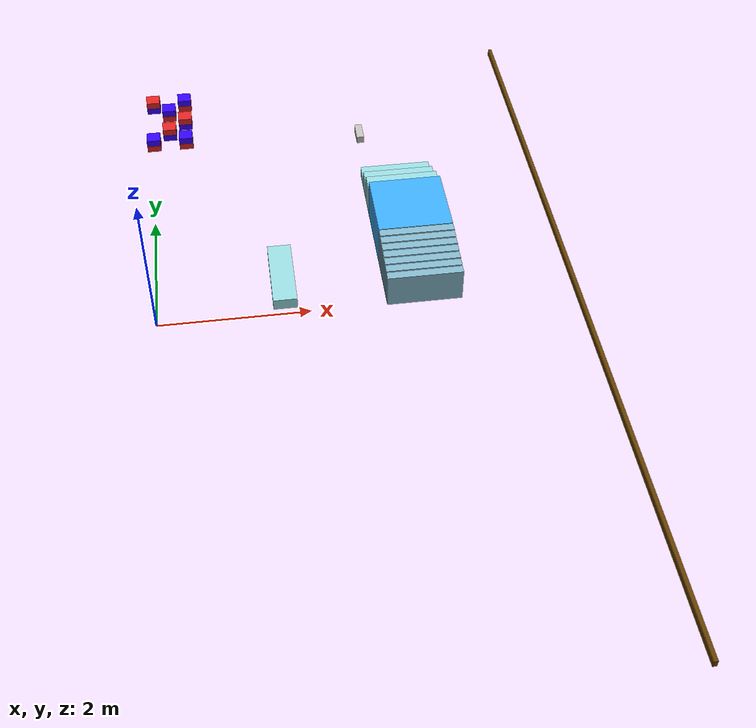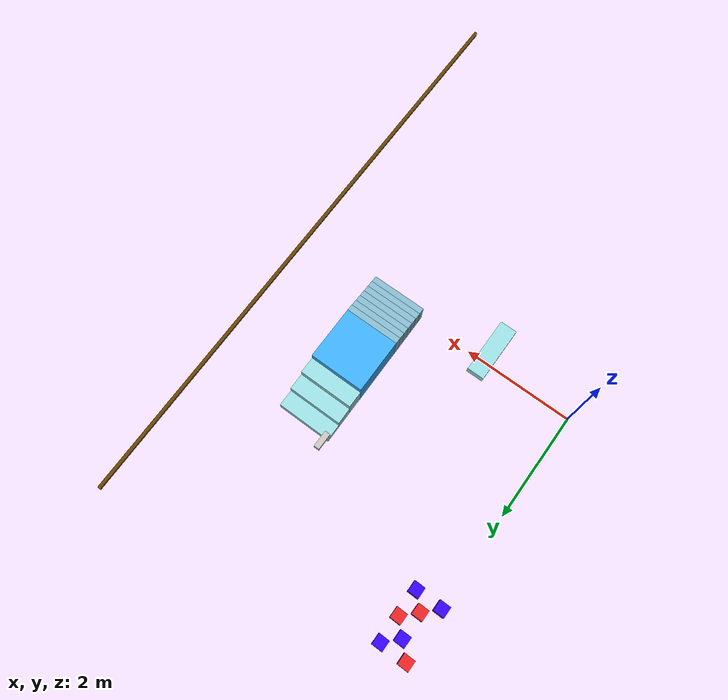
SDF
<sdf version="1.7">
 <world name="robocon2027_arena">
  <model name="fence_pE">
   <static>1</static>
   <pose>5.525 0 0.05 0 -0 0</pose>
   <link name="link">
    <collision name="col"><geometry><box><size>0.05 11.1 0.1</size></box></geometry></collision>
    <visual name="vis">
     <geometry><box><size>0.05 11.1 0.1</size></box></geometry>
     <material>
      <ambient>0.392 0.243 0 1</ambient>
      <diffuse>0.392 0.243 0 1</diffuse>
      <specular>0.04 0.04 0.04 1</specular>
      <emissive>0 0 0 1</emissive>
     </material>
    </visual>
   </link>
  </model>
  <model name="rampsup_blue_23">
   <static>1</static>
   <pose>3.5 0.0417 0.235 0 -0 0</pose>
   <link name="link">
    <collision name="col"><geometry><box><size>1 0.118667 0.47</size></box></geometry></collision>
    <visual name="vis">
     <geometry><box><size>1 0.118667 0.47</size></box></geometry>
     <material>
      <ambient>0.51 0.706 0.784 1</ambient>
      <diffuse>0.51 0.706 0.784 1</diffuse>
      <specular>0.04 0.04 0.04 1</specular>
      <emissive>0 0 0 1</emissive>
     </material>
    </visual>
   </link>
  </model>
  <model name="rampsup_blue_24">
   <static>1</static>
   <pose>3.5 0.1583 0.245 0 -0 0</pose>
   <link name="link">
    <collision name="col"><geometry><box><size>1 0.118667 0.49</size></box></geometry></collision>
    <visual name="vis">
     <geometry><box><size>1 0.118667 0.49</size></box></geometry>
     <material>
      <ambient>0.51 0.706 0.784 1</ambient>
      <diffuse>0.51 0.706 0.784 1</diffuse>
      <specular>0.04 0.04 0.04 1</specular>
      <emissive>0 0 0 1</emissive>
     </material>
    </visual>
   </link>
  </model>
  <model name="rampsup_blue_25">
   <static>1</static>
   <pose>3.5 0.275 0.255 0 -0 0</pose>
   <link name="link">
    <collision name="col"><geometry><box><size>1 0.118667 0.51</size></box></geometry></collision>
    <visual name="vis">
     <geometry><box><size>1 0.118667 0.51</size></box></geometry>
     <material>
      <ambient>0.51 0.706 0.784 1</ambient>
      <diffuse>0.51 0.706 0.784 1</diffuse>
      <specular>0.04 0.04 0.04 1</specular>
      <emissive>0 0 0 1</emissive>
     </material>
    </visual>
   </link>
  </model>
  <model name="rampsup_blue_26">
   <static>1</static>
   <pose>3.5 0.3917 0.265 0 -0 0</pose>
   <link name="link">
    <collision name="col"><geometry><box><size>1 0.118667 0.53</size></box></geometry></collision>
    <visual name="vis">
     <geometry><box><size>1 0.118667 0.53</size></box></geometry>
     <material>
      <ambient>0.51 0.706 0.784 1</ambient>
      <diffuse>0.51 0.706 0.784 1</diffuse>
      <specular>0.04 0.04 0.04 1</specular>
      <emissive>0 0 0 1</emissive>
     </material>
    </visual>
   </link>
  </model>
  <model name="rampsup_blue_27">
   <static>1</static>
   <pose>3.5 0.5083 0.275 0 -0 0</pose>
   <link name="link">
    <collision name="col"><geometry><box><size>1 0.118667 0.55</size></box></geometry></collision>
    <visual name="vis">
     <geometry><box><size>1 0.118667 0.55</size></box></geometry>
     <material>
      <ambient>0.51 0.706 0.784 1</ambient>
      <diffuse>0.51 0.706 0.784 1</diffuse>
      <specular>0.04 0.04 0.04 1</specular>
      <emissive>0 0 0 1</emissive>
     </material>
    </visual>
   </link>
  </model>
  <model name="rampsup_blue_28">
   <static>1</static>
   <pose>3.5 0.625 0.285 0 -0 0</pose>
   <link name="link">
    <collision name="col"><geometry><box><size>1 0.118667 0.57</size></box></geometry></collision>
    <visual name="vis">
     <geometry><box><size>1 0.118667 0.57</size></box></geometry>
     <material>
      <ambient>0.51 0.706 0.784 1</ambient>
      <diffuse>0.51 0.706 0.784 1</diffuse>
      <specular>0.04 0.04 0.04 1</specular>
      <emissive>0 0 0 1</emissive>
     </material>
    </visual>
   </link>
  </model>
  <model name="rampsup_blue_29">
   <static>1</static>
   <pose>3.5 0.7417 0.295 0 -0 0</pose>
   <link name="link">
    <collision name="col"><geometry><box><size>1 0.118667 0.59</size></box></geometry></collision>
    <visual name="vis">
     <geometry><box><size>1 0.118667 0.59</size></box></geometry>
     <material>
      <ambient>0.51 0.706 0.784 1</ambient>
      <diffuse>0.51 0.706 0.784 1</diffuse>
      <specular>0.04 0.04 0.04 1</specular>
      <emissive>0 0 0 1</emissive>
     </material>
    </visual>
   </link>
  </model>
  <model name="plat_blue">
   <static>1</static>
   <pose>3.5 1.3 0.3 0 -0 0</pose>
   <link name="link">
    <collision name="col"><geometry><box><size>1 1 0.6</size></box></geometry></collision>
    <visual name="vis">
     <geometry><box><size>1 1 0.6</size></box></geometry>
     <material>
      <ambient>0.235 0.667 0.961 1</ambient>
      <diffuse>0.235 0.667 0.961 1</diffuse>
      <specular>0.04 0.04 0.04 1</specular>
      <emissive>0 0 0 1</emissive>
     </material>
    </visual>
   </link>
  </model>
  <model name="stp_blue_0">
   <static>1</static>
   <pose>3.5 1.95 0.225 0 -0 0</pose>
   <link name="link">
    <collision name="col"><geometry><box><size>1 0.3 0.45</size></box></geometry></collision>
    <visual name="vis">
     <geometry><box><size>1 0.3 0.45</size></box></geometry>
     <material>
      <ambient>0.588 0.843 0.863 1</ambient>
      <diffuse>0.588 0.843 0.863 1</diffuse>
      <specular>0.04 0.04 0.04 1</specular>
      <emissive>0 0 0 1</emissive>
     </material>
    </visual>
   </link>
  </model>
  <model name="stp_blue_1">
   <static>1</static>
   <pose>3.5 2.25 0.15 0 -0 0</pose>
   <link name="link">
    <collision name="col"><geometry><box><size>1 0.3 0.3</size></box></geometry></collision>
    <visual name="vis">
     <geometry><box><size>1 0.3 0.3</size></box></geometry>
     <material>
      <ambient>0.588 0.843 0.863 1</ambient>
      <diffuse>0.588 0.843 0.863 1</diffuse>
      <specular>0.04 0.04 0.04 1</specular>
      <emissive>0 0 0 1</emissive>
     </material>
    </visual>
   </link>
  </model>
  <model name="stp_blue_2">
   <static>1</static>
   <pose>3.5 2.55 0.075 0 -0 0</pose>
   <link name="link">
    <collision name="col"><geometry><box><size>1 0.3 0.15</size></box></geometry></collision>
    <visual name="vis">
     <geometry><box><size>1 0.3 0.15</size></box></geometry>
     <material>
      <ambient>0.588 0.843 0.863 1</ambient>
      <diffuse>0.588 0.843 0.863 1</diffuse>
      <specular>0.04 0.04 0.04 1</specular>
      <emissive>0 0 0 1</emissive>
     </material>
    </visual>
   </link>
  </model>
  <model name="st2_blue">
   <static>1</static>
   <pose>1.65 0 0.675 0 -0 0</pose>
   <link name="link">
    <collision name="col"><geometry><box><size>0.3 1 0.15</size></box></geometry></collision>
    <visual name="vis">
     <geometry><box><size>0.3 1 0.15</size></box></geometry>
     <material>
      <ambient>0.588 0.843 0.863 1</ambient>
      <diffuse>0.588 0.843 0.863 1</diffuse>
      <specular>0.04 0.04 0.04 1</specular>
      <emissive>0 0 0 1</emissive>
     </material>
    </visual>
   </link>
  </model>
  <model name="rail_we_+_1">
   <static>1</static>
   <pose>3 2.85 0.65 0 -0 0</pose>
   <link name="link">
    <collision name="col"><geometry><box><size>0.1 0.3 0.1</size></box></geometry></collision>
    <visual name="vis">
     <geometry><box><size>0.1 0.3 0.1</size></box></geometry>
     <material>
      <ambient>0.745 0.745 0.725 1</ambient>
      <diffuse>0.745 0.745 0.725 1</diffuse>
      <specular>0.04 0.04 0.04 1</specular>
      <emissive>0 0 0 1</emissive>
     </material>
    </visual>
   </link>
  </model>
  <model name="sky_1">
   <static>0</static>
   <pose>0 4.73 0.1 -0 -0 -0</pose>
   <link name="link">
    <inertial>
     <mass>0.22</mass>
     <inertia>
      <ixx>0.00146667</ixx>
      <iyy>0.00146667</iyy>
      <izz>0.00146667</izz>
      <ixy>0</ixy>
      <ixz>0</ixz>
      <iyz>0</iyz>
     </inertia>
    </inertial>
    <collision name="col"><geometry><box><size>0.2 0.2 0.2</size></box></geometry></collision>
    <visual name="up">
     <pose>0 0 0.05 0 -0 0</pose>
     <geometry><box><size>0.2 0.2 0.1</size></box></geometry>
     <material>
      <ambient>0.875 0.133 0.133 1</ambient>
      <diffuse>0.875 0.133 0.133 1</diffuse>
      <specular>0.04 0.04 0.04 1</specular>
      <emissive>0 0 0 1</emissive>
     </material>
    </visual>
    <visual name="dn">
     <pose>0 0 -0.05 0 -0 0</pose>
     <geometry><box><size>0.2 0.2 0.1</size></box></geometry>
     <material>
      <ambient>0.196 0 1 1</ambient>
      <diffuse>0.196 0 1 1</diffuse>
      <specular>0.04 0.04 0.04 1</specular>
      <emissive>0 0 0 1</emissive>
     </material>
    </visual>
   </link>
  </model>
  <model name="sky_2">
   <static>0</static>
   <pose>0.48 4.73 0.1 -0 -0 -0</pose>
   <link name="link">
    <inertial>
     <mass>0.22</mass>
     <inertia>
      <ixx>0.00146667</ixx>
      <iyy>0.00146667</iyy>
      <izz>0.00146667</izz>
      <ixy>0</ixy>
      <ixz>0</ixz>
      <iyz>0</iyz>
     </inertia>
    </inertial>
    <collision name="col"><geometry><box><size>0.2 0.2 0.2</size></box></geometry></collision>
    <visual name="up">
     <pose>0 0 0.05 0 -0 0</pose>
     <geometry><box><size>0.2 0.2 0.1</size></box></geometry>
     <material>
      <ambient>0.196 0 1 1</ambient>
      <diffuse>0.196 0 1 1</diffuse>
      <specular>0.04 0.04 0.04 1</specular>
      <emissive>0 0 0 1</emissive>
     </material>
    </visual>
    <visual name="dn">
     <pose>0 0 -0.05 0 -0 0</pose>
     <geometry><box><size>0.2 0.2 0.1</size></box></geometry>
     <material>
      <ambient>0.875 0.133 0.133 1</ambient>
      <diffuse>0.875 0.133 0.133 1</diffuse>
      <specular>0.04 0.04 0.04 1</specular>
      <emissive>0 0 0 1</emissive>
     </material>
    </visual>
   </link>
  </model>
  <model name="sky_4">
   <static>0</static>
   <pose>0.24 4.49 0.1 -0 -0 -0</pose>
   <link name="link">
    <inertial>
     <mass>0.22</mass>
     <inertia>
      <ixx>0.00146667</ixx>
      <iyy>0.00146667</iyy>
      <izz>0.00146667</izz>
      <ixy>0</ixy>
      <ixz>0</ixz>
      <iyz>0</iyz>
     </inertia>
    </inertial>
    <collision name="col"><geometry><box><size>0.2 0.2 0.2</size></box></geometry></collision>
    <visual name="up">
     <pose>0 0 0.05 0 -0 0</pose>
     <geometry><box><size>0.2 0.2 0.1</size></box></geometry>
     <material>
      <ambient>0.196 0 1 1</ambient>
      <diffuse>0.196 0 1 1</diffuse>
      <specular>0.04 0.04 0.04 1</specular>
      <emissive>0 0 0 1</emissive>
     </material>
    </visual>
    <visual name="dn">
     <pose>0 0 -0.05 0 -0 0</pose>
     <geometry><box><size>0.2 0.2 0.1</size></box></geometry>
     <material>
      <ambient>0.875 0.133 0.133 1</ambient>
      <diffuse>0.875 0.133 0.133 1</diffuse>
      <specular>0.04 0.04 0.04 1</specular>
      <emissive>0 0 0 1</emissive>
     </material>
    </visual>
   </link>
  </model>
  <model name="sky_6">
   <static>0</static>
   <pose>0.48 4.25 0.1 -0 -0 -0</pose>
   <link name="link">
    <inertial>
     <mass>0.22</mass>
     <inertia>
      <ixx>0.00146667</ixx>
      <iyy>0.00146667</iyy>
      <izz>0.00146667</izz>
      <ixy>0</ixy>
      <ixz>0</ixz>
      <iyz>0</iyz>
     </inertia>
    </inertial>
    <collision name="col"><geometry><box><size>0.2 0.2 0.2</size></box></geometry></collision>
    <visual name="up">
     <pose>0 0 0.05 0 -0 0</pose>
     <geometry><box><size>0.2 0.2 0.1</size></box></geometry>
     <material>
      <ambient>0.875 0.133 0.133 1</ambient>
      <diffuse>0.875 0.133 0.133 1</diffuse>
      <specular>0.04 0.04 0.04 1</specular>
      <emissive>0 0 0 1</emissive>
     </material>
    </visual>
    <visual name="dn">
     <pose>0 0 -0.05 0 -0 0</pose>
     <geometry><box><size>0.2 0.2 0.1</size></box></geometry>
     <material>
      <ambient>0.196 0 1 1</ambient>
      <diffuse>0.196 0 1 1</diffuse>
      <specular>0.04 0.04 0.04 1</specular>
      <emissive>0 0 0 1</emissive>
     </material>
    </visual>
   </link>
  </model>
  <model name="sky_8">
   <static>0</static>
   <pose>0.24 4.01 0.1 -0 -0 -0</pose>
   <link name="link">
    <inertial>
     <mass>0.22</mass>
     <inertia>
      <ixx>0.00146667</ixx>
      <iyy>0.00146667</iyy>
      <izz>0.00146667</izz>
      <ixy>0</ixy>
      <ixz>0</ixz>
      <iyz>0</iyz>
     </inertia>
    </inertial>
    <collision name="col"><geometry><box><size>0.2 0.2 0.2</size></box></geometry></collision>
    <visual name="up">
     <pose>0 0 0.05 0 -0 0</pose>
     <geometry><box><size>0.2 0.2 0.1</size></box></geometry>
     <material>
      <ambient>0.875 0.133 0.133 1</ambient>
      <diffuse>0.875 0.133 0.133 1</diffuse>
      <specular>0.04 0.04 0.04 1</specular>
      <emissive>0 0 0 1</emissive>
     </material>
    </visual>
    <visual name="dn">
     <pose>0 0 -0.05 0 -0 0</pose>
     <geometry><box><size>0.2 0.2 0.1</size></box></geometry>
     <material>
      <ambient>0.196 0 1 1</ambient>
      <diffuse>0.196 0 1 1</diffuse>
      <specular>0.04 0.04 0.04 1</specular>
      <emissive>0 0 0 1</emissive>
     </material>
    </visual>
   </link>
  </model>
  <model name="sky_10">
   <static>0</static>
   <pose>0 3.77 0.1 -0 -0 -0</pose>
   <link name="link">
    <inertial>
     <mass>0.22</mass>
     <inertia>
      <ixx>0.00146667</ixx>
      <iyy>0.00146667</iyy>
      <izz>0.00146667</izz>
      <ixy>0</ixy>
      <ixz>0</ixz>
      <iyz>0</iyz>
     </inertia>
    </inertial>
    <collision name="col"><geometry><box><size>0.2 0.2 0.2</size></box></geometry></collision>
    <visual name="up">
     <pose>0 0 0.05 0 -0 0</pose>
     <geometry><box><size>0.2 0.2 0.1</size></box></geometry>
     <material>
      <ambient>0.196 0 1 1</ambient>
      <diffuse>0.196 0 1 1</diffuse>
      <specular>0.04 0.04 0.04 1</specular>
      <emissive>0 0 0 1</emissive>
     </material>
    </visual>
    <visual name="dn">
     <pose>0 0 -0.05 0 -0 0</pose>
     <geometry><box><size>0.2 0.2 0.1</size></box></geometry>
     <material>
      <ambient>0.875 0.133 0.133 1</ambient>
      <diffuse>0.875 0.133 0.133 1</diffuse>
      <specular>0.04 0.04 0.04 1</specular>
      <emissive>0 0 0 1</emissive>
     </material>
    </visual>
   </link>
  </model>
  <model name="sky_11">
   <static>0</static>
   <pose>0.48 3.77 0.1 -0 -0 -0</pose>
   <link name="link">
    <inertial>
     <mass>0.22</mass>
     <inertia>
      <ixx>0.00146667</ixx>
      <iyy>0.00146667</iyy>
      <izz>0.00146667</izz>
      <ixy>0</ixy>
      <ixz>0</ixz>
      <iyz>0</iyz>
     </inertia>
    </inertial>
    <collision name="col"><geometry><box><size>0.2 0.2 0.2</size></box></geometry></collision>
    <visual name="up">
     <pose>0 0 0.05 0 -0 0</pose>
     <geometry><box><size>0.2 0.2 0.1</size></box></geometry>
     <material>
      <ambient>0.196 0 1 1</ambient>
      <diffuse>0.196 0 1 1</diffuse>
      <specular>0.04 0.04 0.04 1</specular>
      <emissive>0 0 0 1</emissive>
     </material>
    </visual>
    <visual name="dn">
     <pose>0 0 -0.05 0 -0 0</pose>
     <geometry><box><size>0.2 0.2 0.1</size></box></geometry>
     <material>
      <ambient>0.875 0.133 0.133 1</ambient>
      <diffuse>0.875 0.133 0.133 1</diffuse>
      <specular>0.04 0.04 0.04 1</specular>
      <emissive>0 0 0 1</emissive>
     </material>
    </visual>
   </link>
  </model>
 </world>
</sdf>
